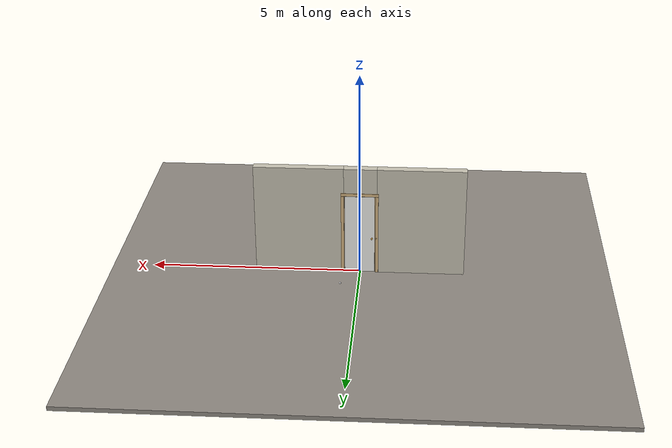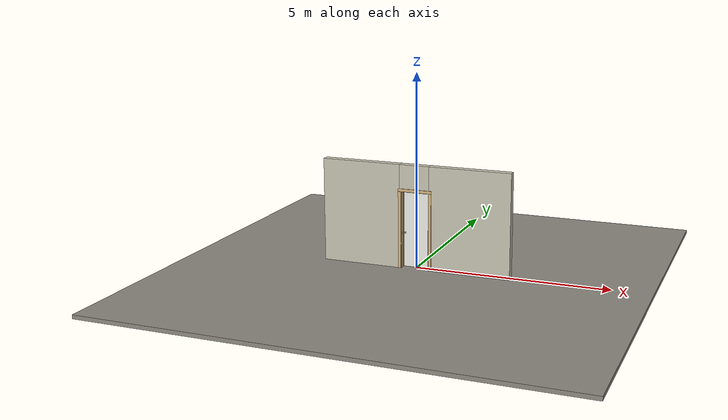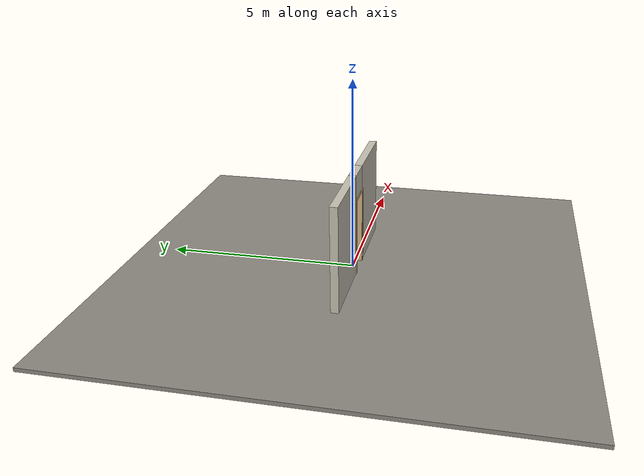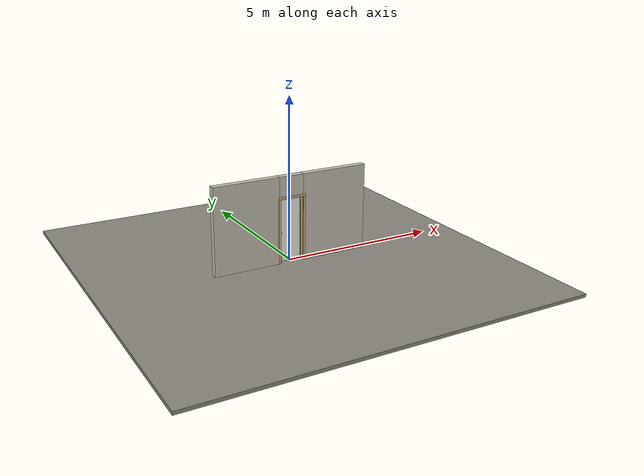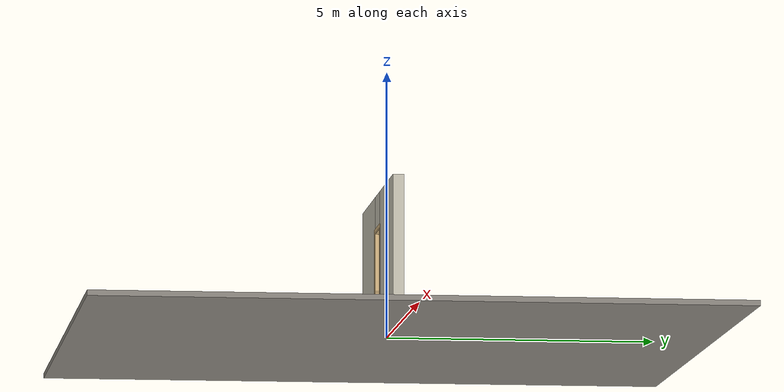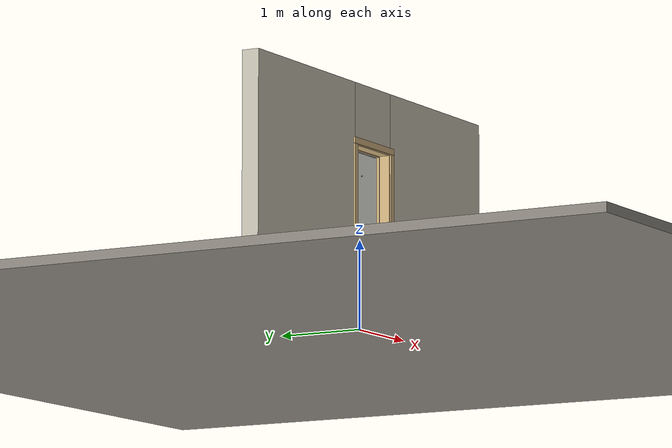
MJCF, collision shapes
<?xml version="1.0" ?>
<mujoco model="db0236_swing_single_full">
  <compiler angle="radian" meshdir="../../hardware" texturedir="../../textures" autolimits="true" inertiafromgeom="false"/>
  <option timestep="0.002" integrator="implicitfast" cone="elliptic" impratio="10" noslip_iterations="3">
    <flag multiccd="enable"/>
  </option>
  <size memory="16M"/>
  <default>
    <geom condim="4" solref="0.005 1" solimp="0.95 0.99 0.001"/>
    <joint solreflimit="0.005 1" solimplimit="0.95 0.99 0.001"/>
    <tendon solreflimit="0.005 1"/>
    <equality solref="0.002 1"/>
  </default>
  <visual>
    <headlight ambient="0.4 0.4 0.4" diffuse="0.7 0.7 0.7" specular="0.2 0.2 0.2"/>
    <quality shadowsize="4096"/>
    <map znear="0.01" zfar="60"/>
  </visual>
  <asset>
    <mesh name="hinge_96510cf394" file="hinge_96510cf394.obj"/>
    <mesh name="hinge_jamb_7fd4ca52b2" file="hinge_jamb_7fd4ca52b2.obj"/>
    <mesh name="knob_d1888f6f03" file="knob_d1888f6f03.obj"/>
    <mesh name="wreath_eea1ff3119" file="wreath_eea1ff3119.obj"/>
    <material name="mat_floor" rgba="0.55 0.53 0.5 1" specular="0.2" shininess="0.15" reflectance="0"/>
    <material name="mat_wall" rgba="0.78 0.76 0.7 1" specular="0.2" shininess="0.1" reflectance="0"/>
    <material name="mat_leaf" rgba="0.93 0.93 0.91 1" specular="0.2" shininess="0.56" reflectance="0"/>
    <material name="mat_leaf_louver" rgba="0.79 0.79 0.773 1" specular="0.2" shininess="0.4" reflectance="0"/>
    <material name="mat_hinge" rgba="0.65 0.66 0.68 1" specular="0.74" shininess="0.5" reflectance="0.36"/>
    <material name="mat_op_brass" rgba="0.85 0.66 0.3 1" specular="0.8" shininess="0.75" reflectance="0.4"/>
    <material name="mat_trim" rgba="0.85 0.66 0.3 1" specular="0.8" shininess="0.75" reflectance="0.4"/>
    <material name="mat_bolt" rgba="0.85 0.66 0.3 1" specular="0.8" shininess="0.75" reflectance="0.4"/>
    <material name="mat_frame" rgba="0.82 0.7 0.5 1" specular="0.2" shininess="0.45" reflectance="0"/>
    <material name="mat_seal" rgba="0.1 0.1 0.1 1" specular="0.2" shininess="0.1" reflectance="0"/>
    <material name="mat_wreath" rgba="0.12 0.3 0.12 1" specular="0.2" shininess="0.05" reflectance="0"/>
    <material name="mat_wreath_hook" rgba="0.85 0.66 0.3 1" specular="0.8" shininess="0.75" reflectance="0.4"/>
    <material name="mat_stop" rgba="0.9 0.9 0.92 1" specular="0.8" shininess="0.9" reflectance="0.4"/>
    <texture name="skybox" type="skybox" builtin="gradient" rgb1="0.6 0.7 0.85" rgb2="0.9 0.92 0.95" width="256" height="256"/>
  </asset>
  <worldbody>
    <light name="sun" pos="1.5 -2.5 4" dir="-0.3 0.5 -0.8" directional="true" diffuse="0.8 0.8 0.8" specular="0.3 0.3 0.3" castshadow="true"/>
    <light name="fill" pos="-1.5 2.5 3" dir="0.3 -0.5 -0.7" directional="true" diffuse="0.35 0.35 0.4" castshadow="false"/>
    <camera name="robot_view" pos="0 -2.573625 1.698475" xyaxes="1 0 0 0 0.26963 0.962964" fovy="52"/>
    <camera name="far_view" pos="0 2.422625 1.698475" xyaxes="-1 0 0 0 -0.26963 0.962964" fovy="52"/>
    <camera name="iso" pos="-1.898575 -2.173925 2.098175" xyaxes="0.741536 -0.670913 0 0.242917 0.268487 0.932151" fovy="46"/>
    <camera name="detail_handle" pos="-0.115 -0.864 1.194" xyaxes="0.97561 0.219512 0 -0.070934 0.315262 0.94635" fovy="38"/>
    <geom name="floor" type="box" size="6 6 0.05" pos="0 0 -0.05" material="mat_floor" group="0" contype="1" conaffinity="1" friction="0.8 0.005 0.0001" density="2400"/>
    <geom name="wall_left" type="box" size="1.046 0.1 1.35" pos="-1.454 -0.0755 1.35" material="mat_wall" group="0" contype="1" conaffinity="1" friction="0.6 0.005 0.0001" density="800"/>
    <geom name="wall_right" type="box" size="1.061 0.1 1.35" pos="1.439 -0.0755 1.35" material="mat_wall" group="0" contype="1" conaffinity="1" friction="0.6 0.005 0.0001" density="800"/>
    <geom name="wall_header" type="box" size="0.393 0.1 0.3265" pos="-0.015 -0.0755 2.3735" material="mat_wall" group="0" contype="1" conaffinity="1" friction="0.6 0.005 0.0001" density="800"/>
    <geom name="hinge_0_jamb" type="mesh" mesh="hinge_jamb_7fd4ca52b2" pos="0.356 0.0245 0.259" quat="0 0 0 1" material="mat_hinge" group="1" contype="0" conaffinity="0" density="7850"/>
    <geom name="hinge_1_jamb" type="mesh" mesh="hinge_jamb_7fd4ca52b2" pos="0.356 0.0245 1.0015" quat="0 0 0 1" material="mat_hinge" group="1" contype="0" conaffinity="0" density="7850"/>
    <geom name="hinge_2_jamb" type="mesh" mesh="hinge_jamb_7fd4ca52b2" pos="0.356 0.0245 1.814" quat="0 0 0 1" material="mat_hinge" group="1" contype="0" conaffinity="0" density="7850"/>
    <geom name="jamb_hinge" type="box" size="0.0095 0.1 0.999" pos="0.3685 -0.0755 0.999" material="mat_frame" group="0" contype="1" conaffinity="1" friction="0.6 0.005 0.0001" density="400"/>
    <geom name="strike_914_wall_n" type="box" size="0.0245 0.083825 0.0167" pos="-0.3835 -0.091675 0.914" material="mat_frame" group="0" contype="1" conaffinity="1" friction="0.6 0.005 0.0001" density="400"/>
    <geom name="strike_914_wall_p" type="box" size="0.0245 0.008 0.0167" pos="-0.3835 0.01585 0.914" material="mat_frame" group="0" contype="1" conaffinity="1" friction="0.6 0.005 0.0001" density="400"/>
    <geom name="strike_914_ramp" type="box" size="0.0245 0.01649 0.0167" pos="-0.388136 0.028673 0.914" quat="0.977148 0 0 0.212558" material="mat_frame" group="0" contype="1" conaffinity="1" friction="0.12 0.005 0.0001" density="400"/>
    <geom name="strike_914_back" type="box" size="0.01615 0.00785 0.0167" pos="-0.39185 0 0.914" material="mat_frame" group="0" contype="1" conaffinity="1" friction="0.6 0.005 0.0001" density="400"/>
    <geom name="jamb_strike_0" type="box" size="0.0245 0.1 0.44865" pos="-0.3835 -0.0755 0.44865" material="mat_frame" group="0" contype="1" conaffinity="1" friction="0.6 0.005 0.0001" density="400"/>
    <geom name="jamb_strike_1" type="box" size="0.0245 0.1 0.53365" pos="-0.3835 -0.0755 1.46435" material="mat_frame" group="0" contype="1" conaffinity="1" friction="0.6 0.005 0.0001" density="400"/>
    <geom name="jamb_head" type="box" size="0.393 0.1 0.0095" pos="-0.015 -0.0755 2.0075" material="mat_frame" group="0" contype="1" conaffinity="1" friction="0.6 0.005 0.0001" density="400"/>
    <geom name="head_stud" type="box" size="0.393 0.1 0.015" pos="-0.015 -0.0755 2.032" material="mat_wall" group="0" contype="1" conaffinity="1" friction="0.6 0.005 0.0001" density="500"/>
    <geom name="stop_hinge" type="box" size="0.0055 0.016 0.999" pos="0.3535 -0.034 0.999" material="mat_frame" group="0" contype="1" conaffinity="1" friction="0.6 0.005 0.0001" density="400"/>
    <geom name="stop_strike" type="box" size="0.0055 0.016 0.999" pos="-0.3535 -0.034 0.999" material="mat_frame" group="0" contype="1" conaffinity="1" friction="0.6 0.005 0.0001" density="400"/>
    <geom name="stop_head" type="box" size="0.359 0.016 0.0055" pos="0 -0.034 1.9925" material="mat_frame" group="0" contype="1" conaffinity="1" friction="0.6 0.005 0.0001" density="400"/>
    <geom name="seal_hinge" type="box" size="0.004 0.0015 0.999" pos="0.356 -0.019 0.999" material="mat_seal" group="1" contype="0" conaffinity="0" density="1100"/>
    <geom name="seal_strike" type="box" size="0.004 0.0015 0.999" pos="-0.356 -0.019 0.999" material="mat_seal" group="1" contype="0" conaffinity="0" density="1100"/>
    <geom name="seal_head" type="box" size="0.339 0.0015 0.008" pos="0 -0.019 1.986" material="mat_seal" group="1" contype="0" conaffinity="0" density="1100"/>
    <geom name="casing_l_n" type="box" size="0.035 0.008 1.0085" pos="-0.408 -0.1835 0.999" material="mat_frame" group="2" contype="0" conaffinity="0" density="400"/>
    <geom name="casing_r_n" type="box" size="0.035 0.008 1.0085" pos="0.408 -0.1835 0.999" material="mat_frame" group="2" contype="0" conaffinity="0" density="400"/>
    <geom name="casing_h_n" type="box" size="0.443 0.008 0.035" pos="0 -0.1835 2.047" material="mat_frame" group="2" contype="0" conaffinity="0" density="400"/>
    <geom name="casing_l_p" type="box" size="0.035 0.008 1.0085" pos="-0.408 0.0325 0.999" material="mat_frame" group="2" contype="0" conaffinity="0" density="400"/>
    <geom name="casing_r_p" type="box" size="0.035 0.008 1.0085" pos="0.408 0.0325 0.999" material="mat_frame" group="2" contype="0" conaffinity="0" density="400"/>
    <geom name="casing_h_p" type="box" size="0.443 0.008 0.035" pos="0 0.0325 2.047" material="mat_frame" group="2" contype="0" conaffinity="0" density="400"/>
    <geom name="floor_stop_dome" type="sphere" size="0.025" pos="0.428596 0.624807 0" material="mat_stop" group="0" contype="1" conaffinity="1" friction="0.6 0.005 0.0001" density="7000"/>
    <site name="approach_point" pos="0 -1.5 0" quat="1 0 0 0" size="0.05" rgba="0.2 0.9 0.2 0.5" group="4"/>
    <site name="goal_point" pos="0 1.5 0" quat="1 0 0 0" size="0.05" rgba="0.2 0.9 0.2 0.5" group="4"/>
    <site name="door_plane_center" pos="0 0 0.999" quat="1 0 0 0" size="0.02" rgba="0.2 0.9 0.2 0.5" group="4"/>
    <body name="leaf" pos="0.359 0 0">
      <inertial pos="-0.3473 -0.0066 1.060732" mass="12.671899" quat="0.501586 -0.499048 0.495518 0.50381" diaginertia="0.540704986 4.147727892 4.674650906"/>
      <joint name="leaf_hinge" type="hinge" axis="0 0 -1" pos="-0.003 0.0245 0" limited="true" range="0 1.658063" solreflimit="0.02 1" damping="2.091613" frictionloss="6.604274" stiffness="6.6" springref="-1.300842" armature="0.02"/>
      <geom name="leaf_slab" type="box" size="0.3555 0.0175 0.9925" pos="-0.3585 0 1.0015" material="mat_leaf" group="0" contype="1" conaffinity="1" friction="0.35 0.005 0.0001" density="1"/>
      <geom name="leaf_louver_0" type="box" size="0.2655 0.002 0.026527" pos="-0.3585 0 0.252614" quat="0.953717 0.300706 0 0" material="mat_leaf_louver" group="1" contype="0" conaffinity="0" density="1"/>
      <geom name="leaf_louver_1" type="box" size="0.2655 0.002 0.026527" pos="-0.3585 0 0.303141" quat="0.953717 0.300706 0 0" material="mat_leaf_louver" group="1" contype="0" conaffinity="0" density="1"/>
      <geom name="leaf_louver_2" type="box" size="0.2655 0.002 0.026527" pos="-0.3585 0 0.353668" quat="0.953717 0.300706 0 0" material="mat_leaf_louver" group="1" contype="0" conaffinity="0" density="1"/>
      <geom name="leaf_louver_3" type="box" size="0.2655 0.002 0.026527" pos="-0.3585 0 0.404195" quat="0.953717 0.300706 0 0" material="mat_leaf_louver" group="1" contype="0" conaffinity="0" density="1"/>
      <geom name="leaf_louver_4" type="box" size="0.2655 0.002 0.026527" pos="-0.3585 0 0.454723" quat="0.953717 0.300706 0 0" material="mat_leaf_louver" group="1" contype="0" conaffinity="0" density="1"/>
      <geom name="leaf_louver_5" type="box" size="0.2655 0.002 0.026527" pos="-0.3585 0 0.50525" quat="0.953717 0.300706 0 0" material="mat_leaf_louver" group="1" contype="0" conaffinity="0" density="1"/>
      <geom name="leaf_louver_6" type="box" size="0.2655 0.002 0.026527" pos="-0.3585 0 0.555777" quat="0.953717 0.300706 0 0" material="mat_leaf_louver" group="1" contype="0" conaffinity="0" density="1"/>
      <geom name="leaf_louver_7" type="box" size="0.2655 0.002 0.026527" pos="-0.3585 0 0.606305" quat="0.953717 0.300706 0 0" material="mat_leaf_louver" group="1" contype="0" conaffinity="0" density="1"/>
      <geom name="leaf_louver_8" type="box" size="0.2655 0.002 0.026527" pos="-0.3585 0 0.656832" quat="0.953717 0.300706 0 0" material="mat_leaf_louver" group="1" contype="0" conaffinity="0" density="1"/>
      <geom name="leaf_louver_9" type="box" size="0.2655 0.002 0.026527" pos="-0.3585 0 0.707359" quat="0.953717 0.300706 0 0" material="mat_leaf_louver" group="1" contype="0" conaffinity="0" density="1"/>
      <geom name="leaf_louver_10" type="box" size="0.2655 0.002 0.026527" pos="-0.3585 0 0.757886" quat="0.953717 0.300706 0 0" material="mat_leaf_louver" group="1" contype="0" conaffinity="0" density="1"/>
      <geom name="leaf_louver_11" type="box" size="0.2655 0.002 0.026527" pos="-0.3585 0 0.808414" quat="0.953717 0.300706 0 0" material="mat_leaf_louver" group="1" contype="0" conaffinity="0" density="1"/>
      <geom name="leaf_louver_12" type="box" size="0.2655 0.002 0.026527" pos="-0.3585 0 0.858941" quat="0.953717 0.300706 0 0" material="mat_leaf_louver" group="1" contype="0" conaffinity="0" density="1"/>
      <geom name="leaf_louver_13" type="box" size="0.2655 0.002 0.026527" pos="-0.3585 0 0.909468" quat="0.953717 0.300706 0 0" material="mat_leaf_louver" group="1" contype="0" conaffinity="0" density="1"/>
      <geom name="leaf_louver_14" type="box" size="0.2655 0.002 0.026527" pos="-0.3585 0 0.959995" quat="0.953717 0.300706 0 0" material="mat_leaf_louver" group="1" contype="0" conaffinity="0" density="1"/>
      <geom name="leaf_louver_15" type="box" size="0.2655 0.002 0.026527" pos="-0.3585 0 1.010523" quat="0.953717 0.300706 0 0" material="mat_leaf_louver" group="1" contype="0" conaffinity="0" density="1"/>
      <geom name="leaf_louver_16" type="box" size="0.2655 0.002 0.026527" pos="-0.3585 0 1.06105" quat="0.953717 0.300706 0 0" material="mat_leaf_louver" group="1" contype="0" conaffinity="0" density="1"/>
      <geom name="leaf_louver_17" type="box" size="0.2655 0.002 0.026527" pos="-0.3585 0 1.111577" quat="0.953717 0.300706 0 0" material="mat_leaf_louver" group="1" contype="0" conaffinity="0" density="1"/>
      <geom name="leaf_louver_18" type="box" size="0.2655 0.002 0.026527" pos="-0.3585 0 1.162105" quat="0.953717 0.300706 0 0" material="mat_leaf_louver" group="1" contype="0" conaffinity="0" density="1"/>
      <geom name="leaf_louver_19" type="box" size="0.2655 0.002 0.026527" pos="-0.3585 0 1.212632" quat="0.953717 0.300706 0 0" material="mat_leaf_louver" group="1" contype="0" conaffinity="0" density="1"/>
      <geom name="leaf_louver_20" type="box" size="0.2655 0.002 0.026527" pos="-0.3585 0 1.263159" quat="0.953717 0.300706 0 0" material="mat_leaf_louver" group="1" contype="0" conaffinity="0" density="1"/>
      <geom name="leaf_louver_21" type="box" size="0.2655 0.002 0.026527" pos="-0.3585 0 1.313686" quat="0.953717 0.300706 0 0" material="mat_leaf_louver" group="1" contype="0" conaffinity="0" density="1"/>
      <geom name="leaf_louver_22" type="box" size="0.2655 0.002 0.026527" pos="-0.3585 0 1.364214" quat="0.953717 0.300706 0 0" material="mat_leaf_louver" group="1" contype="0" conaffinity="0" density="1"/>
      <geom name="leaf_louver_23" type="box" size="0.2655 0.002 0.026527" pos="-0.3585 0 1.414741" quat="0.953717 0.300706 0 0" material="mat_leaf_louver" group="1" contype="0" conaffinity="0" density="1"/>
      <geom name="leaf_louver_24" type="box" size="0.2655 0.002 0.026527" pos="-0.3585 0 1.465268" quat="0.953717 0.300706 0 0" material="mat_leaf_louver" group="1" contype="0" conaffinity="0" density="1"/>
      <geom name="leaf_louver_25" type="box" size="0.2655 0.002 0.026527" pos="-0.3585 0 1.515795" quat="0.953717 0.300706 0 0" material="mat_leaf_louver" group="1" contype="0" conaffinity="0" density="1"/>
      <geom name="leaf_louver_26" type="box" size="0.2655 0.002 0.026527" pos="-0.3585 0 1.566323" quat="0.953717 0.300706 0 0" material="mat_leaf_louver" group="1" contype="0" conaffinity="0" density="1"/>
      <geom name="leaf_louver_27" type="box" size="0.2655 0.002 0.026527" pos="-0.3585 0 1.61685" quat="0.953717 0.300706 0 0" material="mat_leaf_louver" group="1" contype="0" conaffinity="0" density="1"/>
      <geom name="leaf_louver_28" type="box" size="0.2655 0.002 0.026527" pos="-0.3585 0 1.667377" quat="0.953717 0.300706 0 0" material="mat_leaf_louver" group="1" contype="0" conaffinity="0" density="1"/>
      <geom name="leaf_louver_29" type="box" size="0.2655 0.002 0.026527" pos="-0.3585 0 1.717905" quat="0.953717 0.300706 0 0" material="mat_leaf_louver" group="1" contype="0" conaffinity="0" density="1"/>
      <geom name="leaf_louver_30" type="box" size="0.2655 0.002 0.026527" pos="-0.3585 0 1.768432" quat="0.953717 0.300706 0 0" material="mat_leaf_louver" group="1" contype="0" conaffinity="0" density="1"/>
      <geom name="leaf_louver_31" type="box" size="0.2655 0.002 0.026527" pos="-0.3585 0 1.818959" quat="0.953717 0.300706 0 0" material="mat_leaf_louver" group="1" contype="0" conaffinity="0" density="1"/>
      <geom name="leaf_louver_32" type="box" size="0.2655 0.002 0.026527" pos="-0.3585 0 1.869486" quat="0.953717 0.300706 0 0" material="mat_leaf_louver" group="1" contype="0" conaffinity="0" density="1"/>
      <geom name="hinge_0" type="mesh" mesh="hinge_96510cf394" pos="-0.003 0.0245 0.259" quat="0 0 0 1" material="mat_hinge" group="1" contype="0" conaffinity="0" density="7850"/>
      <geom name="hinge_1" type="mesh" mesh="hinge_96510cf394" pos="-0.003 0.0245 1.0015" quat="0 0 0 1" material="mat_hinge" group="1" contype="0" conaffinity="0" density="7850"/>
      <geom name="hinge_2" type="mesh" mesh="hinge_96510cf394" pos="-0.003 0.0245 1.814" quat="0 0 0 1" material="mat_hinge" group="1" contype="0" conaffinity="0" density="7850"/>
      <geom name="leaf_latch_bolt_faceplate" type="box" size="0.0006 0.01235 0.0267" pos="-0.7134 0 0.914" material="mat_bolt" group="1" contype="0" conaffinity="0" density="8500"/>
      <geom name="wreath" type="mesh" mesh="wreath_eea1ff3119" pos="-0.3585 -0.0175 1.5573" quat="0 0 -0.707107 0.707107" material="mat_wreath" group="2" contype="0" conaffinity="0" density="200"/>
      <geom name="wreath_hook" type="cylinder" size="0.004 0.008" pos="-0.3585 -0.0245 1.72305" quat="0.707107 -0.707107 0 0" material="mat_wreath_hook" group="2" contype="0" conaffinity="0" density="8500"/>
      <site name="leaf_edge_mid" pos="-0.714 0 0.9925" quat="1 0 0 0" size="0.02" rgba="0.2 0.9 0.2 0.5" group="4"/>
      <body name="leaf_handle" pos="-0.654 0 0.914">
        <inertial pos="0 0 0" mass="1.143961" quat="0.707107 0 0 -0.707107" diaginertia="0.00031237 0.003706292 0.003706292"/>
        <joint name="leaf_handle_hinge" type="hinge" axis="0 1 0" limited="true" range="0 0.87" damping="0.143613" frictionloss="0.038" stiffness="0.5" springref="-0.5" armature="0.01"/>
        <geom name="leaf_handle_spindle" type="cylinder" size="0.006 0.0255" pos="0 0 0" quat="0.707107 -0.707107 0 0" material="mat_op_brass" group="1" contype="0" conaffinity="0" density="7850"/>
        <geom name="leaf_handle_knob_n" type="mesh" mesh="knob_d1888f6f03" pos="0 -0.0175 0" quat="0 0 -0.707107 0.707107" material="mat_op_brass" group="1" contype="0" conaffinity="0" density="3000"/>
        <geom name="leaf_handle_knob_col_n" type="sphere" size="0.0243" pos="0 -0.064 0" material="mat_op_brass" group="0" contype="1" conaffinity="1" friction="0.9 0.01 0.0001" density="3000"/>
        <geom name="leaf_handle_knob_neck_n" type="cylinder" size="0.011 0.012" pos="0 -0.0295 0" quat="0.707107 -0.707107 0 0" material="mat_op_brass" group="3" contype="1" conaffinity="1" rgba="0.8 0.3 0.3 0.25" friction="0.6 0.005 0.0001" density="3000"/>
        <geom name="leaf_handle_knob_p" type="mesh" mesh="knob_d1888f6f03" pos="0 0.0175 0" quat="0 0 0.707107 0.707107" material="mat_op_brass" group="1" contype="0" conaffinity="0" density="3000"/>
        <geom name="leaf_handle_knob_col_p" type="sphere" size="0.0243" pos="0 0.064 0" material="mat_op_brass" group="0" contype="1" conaffinity="1" friction="0.9 0.01 0.0001" density="3000"/>
        <geom name="leaf_handle_knob_neck_p" type="cylinder" size="0.011 0.012" pos="0 0.0295 0" quat="0.707107 -0.707107 0 0" material="mat_op_brass" group="3" contype="1" conaffinity="1" rgba="0.8 0.3 0.3 0.25" friction="0.6 0.005 0.0001" density="3000"/>
        <site name="leaf_handle_grip_n" pos="0 -0.064 0" quat="1 0 0 0" size="0.012" rgba="0.2 0.9 0.2 0.5" group="4"/>
        <site name="leaf_handle_grip_p" pos="0 0.064 0" quat="1 0 0 0" size="0.012" rgba="0.2 0.9 0.2 0.5" group="4"/>
      </body>
      <body name="leaf_latch_bolt" pos="-0.714 0 0.914">
        <inertial pos="0.00865 0 0" mass="0.041419" quat="0.92388 0.382683 0 0" diaginertia="0.000000798 0.000005598 0.000005598"/>
        <joint name="leaf_latch_bolt_slide" type="slide" axis="1 0 0" limited="true" range="0 0.0127" damping="2" frictionloss="0.3" stiffness="300" springref="-0.008333" armature="0.1"/>
        <geom name="leaf_latch_bolt_capsule" type="capsule" size="0.00635 0.015" pos="0.00865 0 0" quat="0.707107 0 -0.707107 0" material="mat_bolt" group="0" contype="1" conaffinity="1" friction="0.2 0.005 0.0001" density="8500"/>
      </body>
    </body>
  </worldbody>
  <tendon>
    <fixed name="leaf_latch_bolt_coupling" limited="true" range="0 10">
      <joint joint="leaf_latch_bolt_slide" coef="1"/>
      <joint joint="leaf_handle_hinge" coef="-0.015679"/>
    </fixed>
  </tendon>
  <sensor>
    <jointpos name="leaf_hinge_pos" joint="leaf_hinge"/>
    <jointvel name="leaf_hinge_vel" joint="leaf_hinge"/>
    <jointpos name="leaf_handle_hinge_pos" joint="leaf_handle_hinge"/>
    <jointvel name="leaf_handle_hinge_vel" joint="leaf_handle_hinge"/>
    <jointpos name="leaf_latch_bolt_slide_pos" joint="leaf_latch_bolt_slide"/>
    <jointvel name="leaf_latch_bolt_slide_vel" joint="leaf_latch_bolt_slide"/>
  </sensor>
</mujoco>
